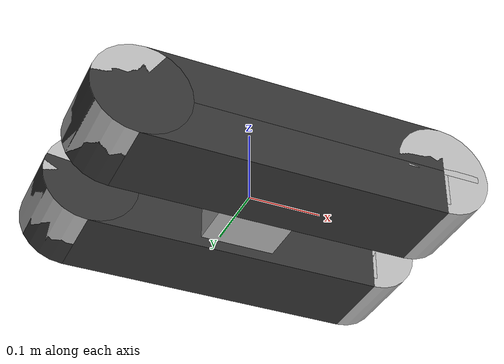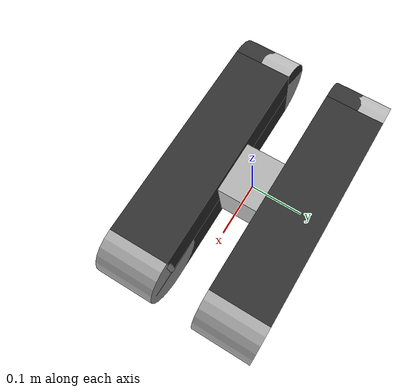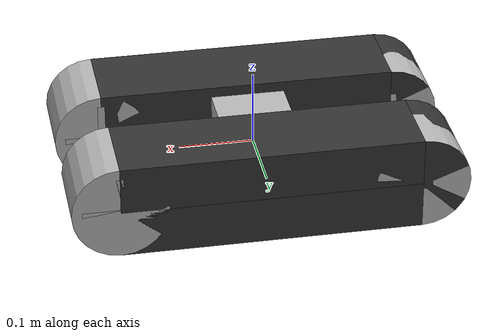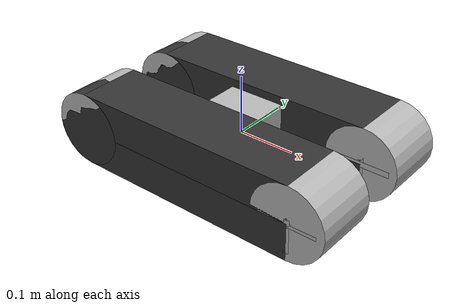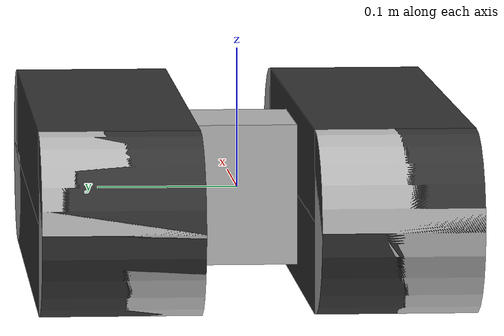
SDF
<sdf version='1.7'>
  <model name='example_track'>
    <link name='base_link'>
      <inertial>
        <pose>-0.057143 0 0 0 -0 0</pose>
        <mass>1.4</mass>
        <inertia>
          <ixx>0.0140694</ixx>
          <ixy>2.35427e-19</ixy>
          <ixz>0</ixz>
          <iyy>0.0339144</iyy>
          <iyz>0</iyz>
          <izz>0.045498</izz>
        </inertia>
      </inertial>
      <collision name='base_link_collision'>
        <pose>0 0 0 0 -0 0</pose>
        <geometry>
          <box>
            <size>0.1 0.1 0.1</size>
          </box>
        </geometry>
      </collision>
      <collision name='base_link_fixed_joint_lump__idler_left_collision_1'>
        <pose>-0.2 0.095 0 1.5708 -0 0</pose>
        <geometry>
          <cylinder>
            <length>0.1115</length>
            <radius>0.064</radius>
          </cylinder>
        </geometry>
      </collision>
      <collision name='base_link_fixed_joint_lump__idler_right_collision_2'>
        <pose>-0.2 -0.095 0 1.5708 -0 0</pose>
        <geometry>
          <cylinder>
            <length>0.1115</length>
            <radius>0.064</radius>
          </cylinder>
        </geometry>
      </collision>
      <visual name='base_link_visual'>
        <pose>0 0 0 0 -0 0</pose>
        <geometry>
          <box>
            <size>0.1 0.1 0.1</size>
          </box>
        </geometry>
      </visual>
      <visual name='base_link_fixed_joint_lump__idler_left_visual_1'>
        <pose>-0.2 0.095 0 1.5708 -0 0</pose>
        <geometry>
          <cylinder>
            <length>0.1115</length>
            <radius>0.064</radius>
          </cylinder>
        </geometry>
      </visual>
      <visual name='base_link_fixed_joint_lump__idler_right_visual_2'>
        <pose>-0.2 -0.095 0 1.5708 -0 0</pose>
        <geometry>
          <cylinder>
            <length>0.1115</length>
            <radius>0.064</radius>
          </cylinder>
        </geometry>
      </visual>
    </link>
    <joint name='sprocket_left_axle' type='revolute'>
      <pose relative_to='base_link'>0.2 0.095 0 0 -0 0</pose>
      <parent>base_link</parent>
      <child>sprocket_left</child>
      <axis>
        <xyz>0 1 0</xyz>
        <limit>
          <lower>-1e+16</lower>
          <upper>1e+16</upper>
        </limit>
        <dynamics>
          <spring_reference>0</spring_reference>
          <spring_stiffness>0</spring_stiffness>
        </dynamics>
      </axis>
    </joint>
    <link name='sprocket_left'>
      <pose relative_to='sprocket_left_axle'>0 0 0 0 -0 0</pose>
      <inertial>
        <pose>0 0 0 0 -0 0</pose>
        <mass>0.2</mass>
        <inertia>
          <ixx>0.000412004</ixx>
          <ixy>0</ixy>
          <ixz>0</ixz>
          <iyy>0.0004096</iyy>
          <iyz>0</iyz>
          <izz>0.000412004</izz>
        </inertia>
      </inertial>
      <collision name='sprocket_left_collision'>
        <pose>0 0 0 1.5708 -0 0</pose>
        <geometry>
          <cylinder>
            <length>0.1115</length>
            <radius>0.064</radius>
          </cylinder>
        </geometry>
      </collision>
      <visual name='sprocket_left_visual'>
        <pose>0 0 0 1.5708 -0 0</pose>
        <geometry>
          <cylinder>
            <length>0.1115</length>
            <radius>0.064</radius>
          </cylinder>
        </geometry>
      </visual>
      <visual name='sprocket_left_visual_1'>
        <pose>0 0 0 0 -0 0</pose>
        <geometry>
          <box>
            <size>0.01 0.1115 0.1</size>
          </box>
        </geometry>
      </visual>
      <visual name='sprocket_left_visual_2'>
        <pose>0 0 0 0 -0 0</pose>
        <geometry>
          <box>
            <size>0.1 0.1115 0.01</size>
          </box>
        </geometry>
      </visual>
    </link>
    <joint name='sprocket_right_axle' type='revolute'>
      <pose relative_to='base_link'>0.2 -0.095 0 0 -0 0</pose>
      <parent>base_link</parent>
      <child>sprocket_right</child>
      <axis>
        <xyz>0 1 0</xyz>
        <limit>
          <lower>-1e+16</lower>
          <upper>1e+16</upper>
        </limit>
        <dynamics>
          <spring_reference>0</spring_reference>
          <spring_stiffness>0</spring_stiffness>
        </dynamics>
      </axis>
    </joint>
    <link name='sprocket_right'>
      <pose relative_to='sprocket_right_axle'>0 0 0 0 -0 0</pose>
      <inertial>
        <pose>0 0 0 0 -0 0</pose>
        <mass>0.2</mass>
        <inertia>
          <ixx>0.000412004</ixx>
          <ixy>0</ixy>
          <ixz>0</ixz>
          <iyy>0.0004096</iyy>
          <iyz>0</iyz>
          <izz>0.000412004</izz>
        </inertia>
      </inertial>
      <collision name='sprocket_right_collision'>
        <pose>0 0 0 1.5708 -0 0</pose>
        <geometry>
          <cylinder>
            <length>0.1115</length>
            <radius>0.064</radius>
          </cylinder>
        </geometry>
      </collision>
      <visual name='sprocket_right_visual'>
        <pose>0 0 0 1.5708 -0 0</pose>
        <geometry>
          <cylinder>
            <length>0.1115</length>
            <radius>0.064</radius>
          </cylinder>
        </geometry>
      </visual>
      <visual name='sprocket_right_visual_1'>
        <pose>0 0 0 0 -0 0</pose>
        <geometry>
          <box>
            <size>0.01 0.1115 0.1</size>
          </box>
        </geometry>
      </visual>
      <visual name='sprocket_right_visual_2'>
        <pose>0 0 0 0 -0 0</pose>
        <geometry>
          <box>
            <size>0.1 0.1115 0.01</size>
          </box>
        </geometry>
      </visual>
    </link>
    <link name='track_left_straight_segment_link0'>
      <pose>-0.2 0.095 0.064 0 -0 0</pose>
      <inertial>
        <pose>0.2 0 -0.032 0 -0 0</pose>
        <mass>0.1</mass>
        <inertia>
          <ixx>0.000137735</ixx>
          <ixy>0</ixy>
          <ixz>0</ixz>
          <iyy>0.00136747</iyy>
          <iyz>0</iyz>
          <izz>0.00143694</izz>
        </inertia>
      </inertial>
      <collision name='collision'>
        <pose>0.2 0 -0.032 0 -0 0</pose>
        <geometry>
          <box>
            <size>0.4 0.1115 0.064</size>
          </box>
        </geometry>
        <surface>
          <friction>
            <ode>
              <mu>1e+06</mu>
              <mu2>1e+06</mu2>
            </ode>
          </friction>
          <contact>
            <ode>
              <min_depth>0.01</min_depth>
              <max_vel>0</max_vel>
            </ode>
          </contact>
        </surface>
      </collision>
      <visual name='visual'>
        <pose>0.2 0 -0.032 0 -0 0</pose>
        <geometry>
          <box>
            <size>0.4 0.1115 0.064</size>
          </box>
        </geometry>
        <material>
          <ambient>0.1 0.1 0.3 1</ambient>
          <diffuse>0.2 0.2 0.2 1</diffuse>
          <specular>0 0 0 1</specular>
          <emissive>0 0 0 1</emissive>
        </material>
      </visual>
    </link>
    <link name='track_left_straight_segment_link1'>
      <pose>0.2 0.095 -0.064 3.14159 0 3.14159</pose>
      <inertial>
        <pose>0.2 0 -0.032 0 -0 0</pose>
        <mass>0.1</mass>
        <inertia>
          <ixx>0.000137735</ixx>
          <ixy>0</ixy>
          <ixz>0</ixz>
          <iyy>0.00136747</iyy>
          <iyz>0</iyz>
          <izz>0.00143694</izz>
        </inertia>
      </inertial>
      <collision name='collision'>
        <pose>0.2 0 -0.032 0 -0 0</pose>
        <geometry>
          <box>
            <size>0.4 0.1115 0.064</size>
          </box>
        </geometry>
        <surface>
          <friction>
            <ode>
              <mu>1e+06</mu>
              <mu2>1e+06</mu2>
            </ode>
          </friction>
          <contact>
            <ode>
              <min_depth>0.01</min_depth>
              <max_vel>0</max_vel>
            </ode>
          </contact>
        </surface>
      </collision>
      <visual name='visual'>
        <pose>0.2 0 -0.032 0 -0 0</pose>
        <geometry>
          <box>
            <size>0.4 0.1115 0.064</size>
          </box>
        </geometry>
        <material>
          <ambient>0.1 0.1 0.3 1</ambient>
          <diffuse>0.2 0.2 0.2 1</diffuse>
          <specular>0 0 0 1</specular>
          <emissive>0 0 0 1</emissive>
        </material>
      </visual>
    </link>
    <joint name='track_left_straight_segment_joint0' type='prismatic'>
      <child>track_left_straight_segment_link0</child>
      <parent>base_link</parent>
      <axis>
        <xyz>1 0 0</xyz>
        <use_parent_model_frame>0</use_parent_model_frame>
        <limit>
          <lower>-1e+16</lower>
          <upper>1e+16</upper>
        </limit>
      </axis>
      <physics>
        <ode>
          <implicit_spring_damper>1</implicit_spring_damper>
        </ode>
      </physics>
    </joint>
    <joint name='track_left_straight_segment_joint1' type='prismatic'>
      <child>track_left_straight_segment_link1</child>
      <parent>base_link</parent>
      <axis>
        <xyz>1 0 0</xyz>
        <use_parent_model_frame>0</use_parent_model_frame>
        <limit>
          <lower>-1e+16</lower>
          <upper>1e+16</upper>
        </limit>
      </axis>
      <physics>
        <ode>
          <implicit_spring_damper>1</implicit_spring_damper>
        </ode>
      </physics>
    </joint>
    <link name='track_left_arc_segment_link0'>
      <pose>0.2 0.095 0.064 0 -0 0</pose>
      <inertial>
        <pose>0 0 -0.064 1.5708 -0 0</pose>
        <mass>0.1</mass>
        <inertia>
          <ixx>0.000206002</ixx>
          <ixy>0</ixy>
          <ixz>0</ixz>
          <iyy>0.000206002</iyy>
          <iyz>0</iyz>
          <izz>0.0002048</izz>
        </inertia>
      </inertial>
      <collision name='collision'>
        <pose>0 0 -0.064 1.5708 -0 0</pose>
        <geometry>
          <cylinder>
            <length>0.1115</length>
            <radius>0.064</radius>
          </cylinder>
        </geometry>
        <surface>
          <friction>
            <ode>
              <mu>1e+06</mu>
              <mu2>100000</mu2>
            </ode>
          </friction>
          <contact>
            <ode>
              <min_depth>0.01</min_depth>
              <max_vel>0</max_vel>
            </ode>
          </contact>
        </surface>
      </collision>
      <visual name='visual'>
        <pose>0 0 -0.064 1.5708 -0 0</pose>
        <geometry>
          <cylinder>
            <length>0.1115</length>
            <radius>0.064</radius>
          </cylinder>
        </geometry>
        <material>
          <ambient>0.1 0.1 0.3 1</ambient>
          <diffuse>0.2 0.2 0.2 1</diffuse>
          <specular>0 0 0 1</specular>
          <emissive>0 0 0 1</emissive>
        </material>
      </visual>
    </link>
    <link name='track_left_arc_segment_link1'>
      <pose>-0.2 0.095 -0.064 3.14159 0 3.14159</pose>
      <inertial>
        <pose>0 0 -0.064 1.5708 -0 0</pose>
        <mass>0.1</mass>
        <inertia>
          <ixx>0.000206002</ixx>
          <ixy>0</ixy>
          <ixz>0</ixz>
          <iyy>0.000206002</iyy>
          <iyz>0</iyz>
          <izz>0.0002048</izz>
        </inertia>
      </inertial>
      <collision name='collision'>
        <pose>0 0 -0.064 1.5708 -0 0</pose>
        <geometry>
          <cylinder>
            <length>0.1115</length>
            <radius>0.064</radius>
          </cylinder>
        </geometry>
        <surface>
          <friction>
            <ode>
              <mu>1e+06</mu>
              <mu2>100000</mu2>
            </ode>
          </friction>
          <contact>
            <ode>
              <min_depth>0.01</min_depth>
              <max_vel>0</max_vel>
            </ode>
          </contact>
        </surface>
      </collision>
      <visual name='visual'>
        <pose>0 0 -0.064 1.5708 -0 0</pose>
        <geometry>
          <cylinder>
            <length>0.1115</length>
            <radius>0.064</radius>
          </cylinder>
        </geometry>
        <material>
          <ambient>0.1 0.1 0.3 1</ambient>
          <diffuse>0.2 0.2 0.2 1</diffuse>
          <specular>0 0 0 1</specular>
          <emissive>0 0 0 1</emissive>
        </material>
      </visual>
    </link>
    <joint name='track_left_arc_segment_joint0' type='revolute'>
      <child>track_left_arc_segment_link0</child>
      <parent>base_link</parent>
      <pose>0 0 -0.064 0 -0 0</pose>
      <axis>
        <xyz>0 1 0</xyz>
        <use_parent_model_frame>0</use_parent_model_frame>
        <limit>
          <lower>-1e+16</lower>
          <upper>1e+16</upper>
        </limit>
      </axis>
      <physics>
        <ode>
          <implicit_spring_damper>1</implicit_spring_damper>
        </ode>
      </physics>
    </joint>
    <joint name='track_left_arc_segment_joint1' type='revolute'>
      <child>track_left_arc_segment_link1</child>
      <parent>base_link</parent>
      <pose>0 0 -0.064 0 -0 0</pose>
      <axis>
        <xyz>0 1 0</xyz>
        <use_parent_model_frame>0</use_parent_model_frame>
        <limit>
          <lower>-1e+16</lower>
          <upper>1e+16</upper>
        </limit>
      </axis>
      <physics>
        <ode>
          <implicit_spring_damper>1</implicit_spring_damper>
        </ode>
      </physics>
    </joint>
    <plugin name='track_left' filename='libContinuousTrack.so'>
      <sprocket>
        <joint>sprocket_left_axle</joint>
        <pitch_diameter>0.223</pitch_diameter>
      </sprocket>
      <trajectory>
        <segment>
          <joint>track_left_straight_segment_joint0</joint>
          <end_position>0.4</end_position>
        </segment>
        <segment>
          <joint>track_left_arc_segment_joint0</joint>
          <end_position>3.141592653589793</end_position>
        </segment>
        <segment>
          <joint>track_left_straight_segment_joint1</joint>
          <end_position>0.4</end_position>
        </segment>
        <segment>
          <joint>track_left_arc_segment_joint1</joint>
          <end_position>3.141592653589793</end_position>
        </segment>
      </trajectory>
      <pattern>
        <elements_per_round>40</elements_per_round>
        <element>
          <collision name='collision'>
            <pose>0 0 0.01 1.5707963267948966 0 0</pose>
            <geometry>
              <cylinder>
                <length>0.1115</length>
                <radius>0.0125</radius>
              </cylinder>
            </geometry>
            <surface>
              <friction>
                <ode>
                  <mu>100000</mu>
                  <mu2>100000</mu2>
                </ode>
              </friction>
              <contact>
                <ode>
                  <min_depth>0.01</min_depth>
                  <max_vel>0</max_vel>
                </ode>
              </contact>
            </surface>
          </collision>
          <visual name='visual'>
            <pose>0 0 0.01 1.5707963267948966 0 0</pose>
            <geometry>
              <cylinder>
                <length>0.1115</length>
                <radius>0.0125</radius>
              </cylinder>
            </geometry>
            <material>
              <ambient>0.1 0.1 0.3 1</ambient>
              <diffuse>0.2 0.2 0.2 1</diffuse>
              <specular>0 0 0 1</specular>
              <emissive>0 0 0 1</emissive>
            </material>
          </visual>
        </element>
      </pattern>
    </plugin>
    <link name='track_right_straight_segment_link0'>
      <pose>-0.2 -0.095 0.064 0 -0 0</pose>
      <inertial>
        <pose>0.2 0 -0.032 0 -0 0</pose>
        <mass>0.1</mass>
        <inertia>
          <ixx>0.000137735</ixx>
          <ixy>0</ixy>
          <ixz>0</ixz>
          <iyy>0.00136747</iyy>
          <iyz>0</iyz>
          <izz>0.00143694</izz>
        </inertia>
      </inertial>
      <collision name='collision'>
        <pose>0.2 0 -0.032 0 -0 0</pose>
        <geometry>
          <box>
            <size>0.4 0.1115 0.064</size>
          </box>
        </geometry>
        <surface>
          <friction>
            <ode>
              <mu>1e+06</mu>
              <mu2>1e+06</mu2>
            </ode>
          </friction>
          <contact>
            <ode>
              <min_depth>0.01</min_depth>
              <max_vel>0</max_vel>
            </ode>
          </contact>
        </surface>
      </collision>
      <visual name='visual'>
        <pose>0.2 0 -0.032 0 -0 0</pose>
        <geometry>
          <box>
            <size>0.4 0.1115 0.064</size>
          </box>
        </geometry>
        <material>
          <ambient>0.1 0.1 0.3 1</ambient>
          <diffuse>0.2 0.2 0.2 1</diffuse>
          <specular>0 0 0 1</specular>
          <emissive>0 0 0 1</emissive>
        </material>
      </visual>
    </link>
    <link name='track_right_straight_segment_link1'>
      <pose>0.2 -0.095 -0.064 3.14159 0 3.14159</pose>
      <inertial>
        <pose>0.2 0 -0.032 0 -0 0</pose>
        <mass>0.1</mass>
        <inertia>
          <ixx>0.000137735</ixx>
          <ixy>0</ixy>
          <ixz>0</ixz>
          <iyy>0.00136747</iyy>
          <iyz>0</iyz>
          <izz>0.00143694</izz>
        </inertia>
      </inertial>
      <collision name='collision'>
        <pose>0.2 0 -0.032 0 -0 0</pose>
        <geometry>
          <box>
            <size>0.4 0.1115 0.064</size>
          </box>
        </geometry>
        <surface>
          <friction>
            <ode>
              <mu>1e+06</mu>
              <mu2>1e+06</mu2>
            </ode>
          </friction>
          <contact>
            <ode>
              <min_depth>0.01</min_depth>
              <max_vel>0</max_vel>
            </ode>
          </contact>
        </surface>
      </collision>
      <visual name='visual'>
        <pose>0.2 0 -0.032 0 -0 0</pose>
        <geometry>
          <box>
            <size>0.4 0.1115 0.064</size>
          </box>
        </geometry>
        <material>
          <ambient>0.1 0.1 0.3 1</ambient>
          <diffuse>0.2 0.2 0.2 1</diffuse>
          <specular>0 0 0 1</specular>
          <emissive>0 0 0 1</emissive>
        </material>
      </visual>
    </link>
    <joint name='track_right_straight_segment_joint0' type='prismatic'>
      <child>track_right_straight_segment_link0</child>
      <parent>base_link</parent>
      <axis>
        <xyz>1 0 0</xyz>
        <use_parent_model_frame>0</use_parent_model_frame>
        <limit>
          <lower>-1e+16</lower>
          <upper>1e+16</upper>
        </limit>
      </axis>
      <physics>
        <ode>
          <implicit_spring_damper>1</implicit_spring_damper>
        </ode>
      </physics>
    </joint>
    <joint name='track_right_straight_segment_joint1' type='prismatic'>
      <child>track_right_straight_segment_link1</child>
      <parent>base_link</parent>
      <axis>
        <xyz>1 0 0</xyz>
        <use_parent_model_frame>0</use_parent_model_frame>
        <limit>
          <lower>-1e+16</lower>
          <upper>1e+16</upper>
        </limit>
      </axis>
      <physics>
        <ode>
          <implicit_spring_damper>1</implicit_spring_damper>
        </ode>
      </physics>
    </joint>
    <link name='track_right_arc_segment_link0'>
      <pose>0.2 -0.095 0.064 0 -0 0</pose>
      <inertial>
        <pose>0 0 -0.064 1.5708 -0 0</pose>
        <mass>0.1</mass>
        <inertia>
          <ixx>0.000206002</ixx>
          <ixy>0</ixy>
          <ixz>0</ixz>
          <iyy>0.000206002</iyy>
          <iyz>0</iyz>
          <izz>0.0002048</izz>
        </inertia>
      </inertial>
      <collision name='collision'>
        <pose>0 0 -0.064 1.5708 -0 0</pose>
        <geometry>
          <cylinder>
            <length>0.1115</length>
            <radius>0.064</radius>
          </cylinder>
        </geometry>
        <surface>
          <friction>
            <ode>
              <mu>1e+06</mu>
              <mu2>100000</mu2>
            </ode>
          </friction>
          <contact>
            <ode>
              <min_depth>0.01</min_depth>
              <max_vel>0</max_vel>
            </ode>
          </contact>
        </surface>
      </collision>
      <visual name='visual'>
        <pose>0 0 -0.064 1.5708 -0 0</pose>
        <geometry>
          <cylinder>
            <length>0.1115</length>
            <radius>0.064</radius>
          </cylinder>
        </geometry>
        <material>
          <ambient>0.1 0.1 0.3 1</ambient>
          <diffuse>0.2 0.2 0.2 1</diffuse>
          <specular>0 0 0 1</specular>
          <emissive>0 0 0 1</emissive>
        </material>
      </visual>
    </link>
    <link name='track_right_arc_segment_link1'>
      <pose>-0.2 -0.095 -0.064 3.14159 0 3.14159</pose>
      <inertial>
        <pose>0 0 -0.064 1.5708 -0 0</pose>
        <mass>0.1</mass>
        <inertia>
          <ixx>0.000206002</ixx>
          <ixy>0</ixy>
          <ixz>0</ixz>
          <iyy>0.000206002</iyy>
          <iyz>0</iyz>
          <izz>0.0002048</izz>
        </inertia>
      </inertial>
      <collision name='collision'>
        <pose>0 0 -0.064 1.5708 -0 0</pose>
        <geometry>
          <cylinder>
            <length>0.1115</length>
            <radius>0.064</radius>
          </cylinder>
        </geometry>
        <surface>
          <friction>
            <ode>
              <mu>1e+06</mu>
              <mu2>100000</mu2>
            </ode>
          </friction>
          <contact>
            <ode>
              <min_depth>0.01</min_depth>
              <max_vel>0</max_vel>
            </ode>
          </contact>
        </surface>
      </collision>
      <visual name='visual'>
        <pose>0 0 -0.064 1.5708 -0 0</pose>
        <geometry>
          <cylinder>
            <length>0.1115</length>
            <radius>0.064</radius>
          </cylinder>
        </geometry>
        <material>
          <ambient>0.1 0.1 0.3 1</ambient>
          <diffuse>0.2 0.2 0.2 1</diffuse>
          <specular>0 0 0 1</specular>
          <emissive>0 0 0 1</emissive>
        </material>
      </visual>
    </link>
    <joint name='track_right_arc_segment_joint0' type='revolute'>
      <child>track_right_arc_segment_link0</child>
      <parent>base_link</parent>
      <pose>0 0 -0.064 0 -0 0</pose>
      <axis>
        <xyz>0 1 0</xyz>
        <use_parent_model_frame>0</use_parent_model_frame>
        <limit>
          <lower>-1e+16</lower>
          <upper>1e+16</upper>
        </limit>
      </axis>
      <physics>
        <ode>
          <implicit_spring_damper>1</implicit_spring_damper>
        </ode>
      </physics>
    </joint>
    <joint name='track_right_arc_segment_joint1' type='revolute'>
      <child>track_right_arc_segment_link1</child>
      <parent>base_link</parent>
      <pose>0 0 -0.064 0 -0 0</pose>
      <axis>
        <xyz>0 1 0</xyz>
        <use_parent_model_frame>0</use_parent_model_frame>
        <limit>
          <lower>-1e+16</lower>
          <upper>1e+16</upper>
        </limit>
      </axis>
      <physics>
        <ode>
          <implicit_spring_damper>1</implicit_spring_damper>
        </ode>
      </physics>
    </joint>
    <plugin name='track_right' filename='libContinuousTrack.so'>
      <sprocket>
        <joint>sprocket_right_axle</joint>
        <pitch_diameter>0.223</pitch_diameter>
      </sprocket>
      <trajectory>
        <segment>
          <joint>track_right_straight_segment_joint0</joint>
          <end_position>0.4</end_position>
        </segment>
        <segment>
          <joint>track_right_arc_segment_joint0</joint>
          <end_position>3.141592653589793</end_position>
        </segment>
        <segment>
          <joint>track_right_straight_segment_joint1</joint>
          <end_position>0.4</end_position>
        </segment>
        <segment>
          <joint>track_right_arc_segment_joint1</joint>
          <end_position>3.141592653589793</end_position>
        </segment>
      </trajectory>
      <pattern>
        <elements_per_round>40</elements_per_round>
        <element>
          <collision name='collision'>
            <pose>0 0 0.01 1.5707963267948966 0 0</pose>
            <geometry>
              <cylinder>
                <length>0.1115</length>
                <radius>0.0125</radius>
              </cylinder>
            </geometry>
            <surface>
              <friction>
                <ode>
                  <mu>100000</mu>
                  <mu2>100000</mu2>
                </ode>
              </friction>
              <contact>
                <ode>
                  <min_depth>0.01</min_depth>
                  <max_vel>0</max_vel>
                </ode>
              </contact>
            </surface>
          </collision>
          <visual name='visual'>
            <pose>0 0 0.01 1.5707963267948966 0 0</pose>
            <geometry>
              <cylinder>
                <length>0.1115</length>
                <radius>0.0125</radius>
              </cylinder>
            </geometry>
            <material>
              <ambient>0.1 0.1 0.3 1</ambient>
              <diffuse>0.2 0.2 0.2 1</diffuse>
              <specular>0 0 0 1</specular>
              <emissive>0 0 0 1</emissive>
            </material>
          </visual>
        </element>
      </pattern>
    </plugin>
    <static>0</static>
    <plugin name='gazebo_ros_control' filename='libgazebo_ros_control.so'>
      <robotSimType>gazebo_ros_control/DefaultRobotHWSim</robotSimType>
      <legacyModeNS>0</legacyModeNS>
    </plugin>
  </model>
</sdf>
